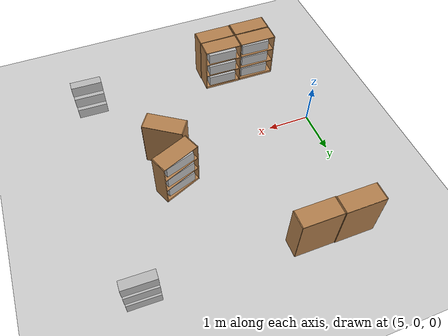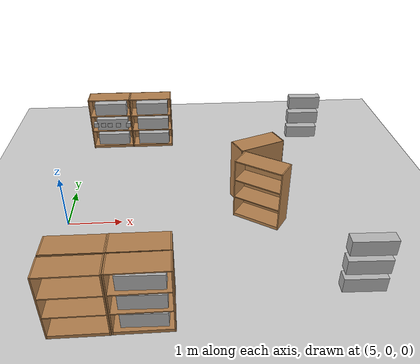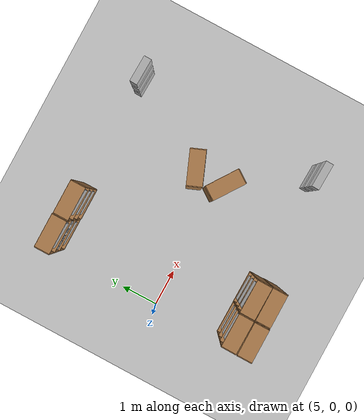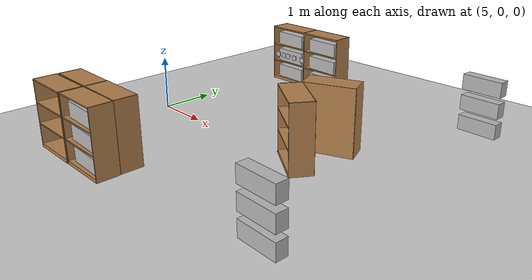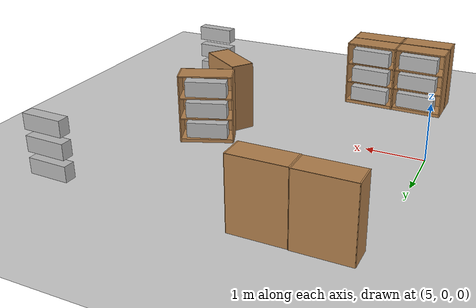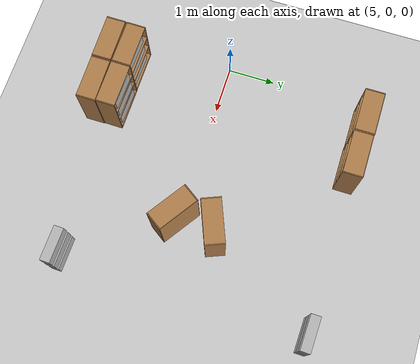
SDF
<sdf version="1.7">
 <world name="default">
  <model name="ground_plane">
   <static>1</static>
   <link name="link">
    <collision name="collision">
     <geometry><plane><normal>0 0 1</normal><size>100 100</size></plane></geometry>
     <surface><friction><ode><mu>100</mu><mu2>50</mu2></ode></friction></surface>
    </collision>
    <visual name="visual">
     <cast_shadows>0</cast_shadows>
     <geometry><plane><normal>0 0 1</normal><size>100 100</size></plane></geometry>
     <material>
      <script><uri>file://media/materials/scripts/gazebo.material</uri><name>Gazebo/Grey</name></script>
     </material>
    </visual>
   </link>
  </model>
  <model name="bookshelf">
   <static>1</static>
   <link name="link">
    <inertial><mass>1</mass></inertial>
    <collision name="back">
     <pose>0 0.005 0.6 0 -0 0</pose>
     <geometry><box><size>0.9 0.01 1.2</size></box></geometry>
    </collision>
    <visual name="visual1">
     <pose>0 0.005 0.6 0 -0 0</pose>
     <geometry><box><size>0.9 0.01 1.2</size></box></geometry>
     <material>
      <script><uri>file://media/materials/scripts/gazebo.material</uri><name>Gazebo/Wood</name></script>
     </material>
    </visual>
    <collision name="left_side">
     <pose>0.45 -0.195 0.6 0 -0 0</pose>
     <geometry><box><size>0.02 0.4 1.2</size></box></geometry>
    </collision>
    <visual name="visual2">
     <pose>0.45 -0.195 0.6 0 -0 0</pose>
     <geometry><box><size>0.02 0.4 1.2</size></box></geometry>
     <material>
      <script><uri>file://media/materials/scripts/gazebo.material</uri><name>Gazebo/Wood</name></script>
     </material>
    </visual>
    <collision name="right_side">
     <pose>-0.45 -0.195 0.6 0 -0 0</pose>
     <geometry><box><size>0.02 0.4 1.2</size></box></geometry>
    </collision>
    <visual name="visual3">
     <pose>-0.45 -0.195 0.6 0 -0 0</pose>
     <geometry><box><size>0.02 0.4 1.2</size></box></geometry>
     <material>
      <script><uri>file://media/materials/scripts/gazebo.material</uri><name>Gazebo/Wood</name></script>
     </material>
    </visual>
    <collision name="bottom">
     <pose>0 -0.195 0.03 0 -0 0</pose>
     <geometry><box><size>0.88 0.4 0.06</size></box></geometry>
    </collision>
    <visual name="visual4">
     <pose>0 -0.195 0.03 0 -0 0</pose>
     <geometry><box><size>0.88 0.4 0.06</size></box></geometry>
     <material>
      <script><uri>file://media/materials/scripts/gazebo.material</uri><name>Gazebo/Wood</name></script>
     </material>
    </visual>
    <collision name="top">
     <pose>0 -0.195 1.19 0 -0 0</pose>
     <geometry><box><size>0.88 0.4 0.02</size></box></geometry>
    </collision>
    <visual name="visual5">
     <pose>0 -0.195 1.19 0 -0 0</pose>
     <geometry><box><size>0.88 0.4 0.02</size></box></geometry>
     <material>
      <script><uri>file://media/materials/scripts/gazebo.material</uri><name>Gazebo/Wood</name></script>
     </material>
    </visual>
    <collision name="low_shelf">
     <pose>0 -0.195 0.43 0 -0 0</pose>
     <geometry><box><size>0.88 0.4 0.02</size></box></geometry>
    </collision>
    <visual name="visual6">
     <pose>0 -0.195 0.43 0 -0 0</pose>
     <geometry><box><size>0.88 0.4 0.02</size></box></geometry>
     <material>
      <script><uri>file://media/materials/scripts/gazebo.material</uri><name>Gazebo/Wood</name></script>
     </material>
    </visual>
    <collision name="high_shelf">
     <pose>0 -0.195 0.8 0 -0 0</pose>
     <geometry><box><size>0.88 0.4 0.02</size></box></geometry>
    </collision>
    <visual name="visual7">
     <pose>0 -0.195 0.8 0 -0 0</pose>
     <geometry><box><size>0.88 0.4 0.02</size></box></geometry>
     <material>
      <script><uri>file://media/materials/scripts/gazebo.material</uri><name>Gazebo/Wood</name></script>
     </material>
    </visual>
   </link>
   <pose>6.50028 3.23644 0.012624 0 -0 0</pose>
  </model>
  <model name="bookshelf_clone">
   <static>1</static>
   <link name="link">
    <inertial><mass>1</mass></inertial>
    <collision name="back">
     <pose>0 0.005 0.6 0 -0 0</pose>
     <geometry><box><size>0.9 0.01 1.2</size></box></geometry>
    </collision>
    <visual name="visual1">
     <pose>0 0.005 0.6 0 -0 0</pose>
     <geometry><box><size>0.9 0.01 1.2</size></box></geometry>
     <material>
      <script><uri>file://media/materials/scripts/gazebo.material</uri><name>Gazebo/Wood</name></script>
     </material>
    </visual>
    <collision name="left_side">
     <pose>0.45 -0.195 0.6 0 -0 0</pose>
     <geometry><box><size>0.02 0.4 1.2</size></box></geometry>
    </collision>
    <visual name="visual2">
     <pose>0.45 -0.195 0.6 0 -0 0</pose>
     <geometry><box><size>0.02 0.4 1.2</size></box></geometry>
     <material>
      <script><uri>file://media/materials/scripts/gazebo.material</uri><name>Gazebo/Wood</name></script>
     </material>
    </visual>
    <collision name="right_side">
     <pose>-0.45 -0.195 0.6 0 -0 0</pose>
     <geometry><box><size>0.02 0.4 1.2</size></box></geometry>
    </collision>
    <visual name="visual3">
     <pose>-0.45 -0.195 0.6 0 -0 0</pose>
     <geometry><box><size>0.02 0.4 1.2</size></box></geometry>
     <material>
      <script><uri>file://media/materials/scripts/gazebo.material</uri><name>Gazebo/Wood</name></script>
     </material>
    </visual>
    <collision name="bottom">
     <pose>0 -0.195 0.03 0 -0 0</pose>
     <geometry><box><size>0.88 0.4 0.06</size></box></geometry>
    </collision>
    <visual name="visual4">
     <pose>0 -0.195 0.03 0 -0 0</pose>
     <geometry><box><size>0.88 0.4 0.06</size></box></geometry>
     <material>
      <script><uri>file://media/materials/scripts/gazebo.material</uri><name>Gazebo/Wood</name></script>
     </material>
    </visual>
    <collision name="top">
     <pose>0 -0.195 1.19 0 -0 0</pose>
     <geometry><box><size>0.88 0.4 0.02</size></box></geometry>
    </collision>
    <visual name="visual5">
     <pose>0 -0.195 1.19 0 -0 0</pose>
     <geometry><box><size>0.88 0.4 0.02</size></box></geometry>
     <material>
      <script><uri>file://media/materials/scripts/gazebo.material</uri><name>Gazebo/Wood</name></script>
     </material>
    </visual>
    <collision name="low_shelf">
     <pose>0 -0.195 0.43 0 -0 0</pose>
     <geometry><box><size>0.88 0.4 0.02</size></box></geometry>
    </collision>
    <visual name="visual6">
     <pose>0 -0.195 0.43 0 -0 0</pose>
     <geometry><box><size>0.88 0.4 0.02</size></box></geometry>
     <material>
      <script><uri>file://media/materials/scripts/gazebo.material</uri><name>Gazebo/Wood</name></script>
     </material>
    </visual>
    <collision name="high_shelf">
     <pose>0 -0.195 0.8 0 -0 0</pose>
     <geometry><box><size>0.88 0.4 0.02</size></box></geometry>
    </collision>
    <visual name="visual7">
     <pose>0 -0.195 0.8 0 -0 0</pose>
     <geometry><box><size>0.88 0.4 0.02</size></box></geometry>
     <material>
      <script><uri>file://media/materials/scripts/gazebo.material</uri><name>Gazebo/Wood</name></script>
     </material>
    </visual>
   </link>
   <pose>5.58313 3.24733 0.012624 0 -0 0</pose>
  </model>
  <model name="bookshelf_clone_0_clone_1_clone">
   <static>1</static>
   <link name="link">
    <inertial><mass>1</mass></inertial>
    <collision name="back">
     <pose>0 0.005 0.6 0 -0 0</pose>
     <geometry><box><size>0.9 0.01 1.2</size></box></geometry>
    </collision>
    <visual name="visual1">
     <pose>0 0.005 0.6 0 -0 0</pose>
     <geometry><box><size>0.9 0.01 1.2</size></box></geometry>
     <material>
      <script><uri>file://media/materials/scripts/gazebo.material</uri><name>Gazebo/Wood</name></script>
     </material>
    </visual>
    <collision name="left_side">
     <pose>0.45 -0.195 0.6 0 -0 0</pose>
     <geometry><box><size>0.02 0.4 1.2</size></box></geometry>
    </collision>
    <visual name="visual2">
     <pose>0.45 -0.195 0.6 0 -0 0</pose>
     <geometry><box><size>0.02 0.4 1.2</size></box></geometry>
     <material>
      <script><uri>file://media/materials/scripts/gazebo.material</uri><name>Gazebo/Wood</name></script>
     </material>
    </visual>
    <collision name="right_side">
     <pose>-0.45 -0.195 0.6 0 -0 0</pose>
     <geometry><box><size>0.02 0.4 1.2</size></box></geometry>
    </collision>
    <visual name="visual3">
     <pose>-0.45 -0.195 0.6 0 -0 0</pose>
     <geometry><box><size>0.02 0.4 1.2</size></box></geometry>
     <material>
      <script><uri>file://media/materials/scripts/gazebo.material</uri><name>Gazebo/Wood</name></script>
     </material>
    </visual>
    <collision name="bottom">
     <pose>0 -0.195 0.03 0 -0 0</pose>
     <geometry><box><size>0.88 0.4 0.06</size></box></geometry>
    </collision>
    <visual name="visual4">
     <pose>0 -0.195 0.03 0 -0 0</pose>
     <geometry><box><size>0.88 0.4 0.06</size></box></geometry>
     <material>
      <script><uri>file://media/materials/scripts/gazebo.material</uri><name>Gazebo/Wood</name></script>
     </material>
    </visual>
    <collision name="top">
     <pose>0 -0.195 1.19 0 -0 0</pose>
     <geometry><box><size>0.88 0.4 0.02</size></box></geometry>
    </collision>
    <visual name="visual5">
     <pose>0 -0.195 1.19 0 -0 0</pose>
     <geometry><box><size>0.88 0.4 0.02</size></box></geometry>
     <material>
      <script><uri>file://media/materials/scripts/gazebo.material</uri><name>Gazebo/Wood</name></script>
     </material>
    </visual>
    <collision name="low_shelf">
     <pose>0 -0.195 0.43 0 -0 0</pose>
     <geometry><box><size>0.88 0.4 0.02</size></box></geometry>
    </collision>
    <visual name="visual6">
     <pose>0 -0.195 0.43 0 -0 0</pose>
     <geometry><box><size>0.88 0.4 0.02</size></box></geometry>
     <material>
      <script><uri>file://media/materials/scripts/gazebo.material</uri><name>Gazebo/Wood</name></script>
     </material>
    </visual>
    <collision name="high_shelf">
     <pose>0 -0.195 0.8 0 -0 0</pose>
     <geometry><box><size>0.88 0.4 0.02</size></box></geometry>
    </collision>
    <visual name="visual7">
     <pose>0 -0.195 0.8 0 -0 0</pose>
     <geometry><box><size>0.88 0.4 0.02</size></box></geometry>
     <material>
      <script><uri>file://media/materials/scripts/gazebo.material</uri><name>Gazebo/Wood</name></script>
     </material>
    </visual>
   </link>
   <pose>5.60363 -2.22371 0.012624 0 -0 0</pose>
  </model>
  <model name="bookshelf_clone_0_clone_1_clone_0">
   <static>1</static>
   <link name="link">
    <inertial><mass>1</mass></inertial>
    <collision name="back">
     <pose>0 0.005 0.6 0 -0 0</pose>
     <geometry><box><size>0.9 0.01 1.2</size></box></geometry>
    </collision>
    <visual name="visual1">
     <pose>0 0.005 0.6 0 -0 0</pose>
     <geometry><box><size>0.9 0.01 1.2</size></box></geometry>
     <material>
      <script><uri>file://media/materials/scripts/gazebo.material</uri><name>Gazebo/Wood</name></script>
     </material>
    </visual>
    <collision name="left_side">
     <pose>0.45 -0.195 0.6 0 -0 0</pose>
     <geometry><box><size>0.02 0.4 1.2</size></box></geometry>
    </collision>
    <visual name="visual2">
     <pose>0.45 -0.195 0.6 0 -0 0</pose>
     <geometry><box><size>0.02 0.4 1.2</size></box></geometry>
     <material>
      <script><uri>file://media/materials/scripts/gazebo.material</uri><name>Gazebo/Wood</name></script>
     </material>
    </visual>
    <collision name="right_side">
     <pose>-0.45 -0.195 0.6 0 -0 0</pose>
     <geometry><box><size>0.02 0.4 1.2</size></box></geometry>
    </collision>
    <visual name="visual3">
     <pose>-0.45 -0.195 0.6 0 -0 0</pose>
     <geometry><box><size>0.02 0.4 1.2</size></box></geometry>
     <material>
      <script><uri>file://media/materials/scripts/gazebo.material</uri><name>Gazebo/Wood</name></script>
     </material>
    </visual>
    <collision name="bottom">
     <pose>0 -0.195 0.03 0 -0 0</pose>
     <geometry><box><size>0.88 0.4 0.06</size></box></geometry>
    </collision>
    <visual name="visual4">
     <pose>0 -0.195 0.03 0 -0 0</pose>
     <geometry><box><size>0.88 0.4 0.06</size></box></geometry>
     <material>
      <script><uri>file://media/materials/scripts/gazebo.material</uri><name>Gazebo/Wood</name></script>
     </material>
    </visual>
    <collision name="top">
     <pose>0 -0.195 1.19 0 -0 0</pose>
     <geometry><box><size>0.88 0.4 0.02</size></box></geometry>
    </collision>
    <visual name="visual5">
     <pose>0 -0.195 1.19 0 -0 0</pose>
     <geometry><box><size>0.88 0.4 0.02</size></box></geometry>
     <material>
      <script><uri>file://media/materials/scripts/gazebo.material</uri><name>Gazebo/Wood</name></script>
     </material>
    </visual>
    <collision name="low_shelf">
     <pose>0 -0.195 0.43 0 -0 0</pose>
     <geometry><box><size>0.88 0.4 0.02</size></box></geometry>
    </collision>
    <visual name="visual6">
     <pose>0 -0.195 0.43 0 -0 0</pose>
     <geometry><box><size>0.88 0.4 0.02</size></box></geometry>
     <material>
      <script><uri>file://media/materials/scripts/gazebo.material</uri><name>Gazebo/Wood</name></script>
     </material>
    </visual>
    <collision name="high_shelf">
     <pose>0 -0.195 0.8 0 -0 0</pose>
     <geometry><box><size>0.88 0.4 0.02</size></box></geometry>
    </collision>
    <visual name="visual7">
     <pose>0 -0.195 0.8 0 -0 0</pose>
     <geometry><box><size>0.88 0.4 0.02</size></box></geometry>
     <material>
      <script><uri>file://media/materials/scripts/gazebo.material</uri><name>Gazebo/Wood</name></script>
     </material>
    </visual>
   </link>
   <pose>6.53127 -2.2171 0.012624 0 -0 0</pose>
  </model>
  <model name="bookshelf_clone_clone_clone_1_clone_0_clone">
   <static>1</static>
   <link name="link">
    <inertial><mass>1</mass></inertial>
    <collision name="back">
     <pose>0 0.005 0.6 0 -0 0</pose>
     <geometry><box><size>0.9 0.01 1.2</size></box></geometry>
    </collision>
    <visual name="visual1">
     <pose>0 0.005 0.6 0 -0 0</pose>
     <geometry><box><size>0.9 0.01 1.2</size></box></geometry>
     <material>
      <script><uri>file://media/materials/scripts/gazebo.material</uri><name>Gazebo/Wood</name></script>
     </material>
    </visual>
    <collision name="left_side">
     <pose>0.45 -0.195 0.6 0 -0 0</pose>
     <geometry><box><size>0.02 0.4 1.2</size></box></geometry>
    </collision>
    <visual name="visual2">
     <pose>0.45 -0.195 0.6 0 -0 0</pose>
     <geometry><box><size>0.02 0.4 1.2</size></box></geometry>
     <material>
      <script><uri>file://media/materials/scripts/gazebo.material</uri><name>Gazebo/Wood</name></script>
     </material>
    </visual>
    <collision name="right_side">
     <pose>-0.45 -0.195 0.6 0 -0 0</pose>
     <geometry><box><size>0.02 0.4 1.2</size></box></geometry>
    </collision>
    <visual name="visual3">
     <pose>-0.45 -0.195 0.6 0 -0 0</pose>
     <geometry><box><size>0.02 0.4 1.2</size></box></geometry>
     <material>
      <script><uri>file://media/materials/scripts/gazebo.material</uri><name>Gazebo/Wood</name></script>
     </material>
    </visual>
    <collision name="bottom">
     <pose>0 -0.195 0.03 0 -0 0</pose>
     <geometry><box><size>0.88 0.4 0.06</size></box></geometry>
    </collision>
    <visual name="visual4">
     <pose>0 -0.195 0.03 0 -0 0</pose>
     <geometry><box><size>0.88 0.4 0.06</size></box></geometry>
     <material>
      <script><uri>file://media/materials/scripts/gazebo.material</uri><name>Gazebo/Wood</name></script>
     </material>
    </visual>
    <collision name="top">
     <pose>0 -0.195 1.19 0 -0 0</pose>
     <geometry><box><size>0.88 0.4 0.02</size></box></geometry>
    </collision>
    <visual name="visual5">
     <pose>0 -0.195 1.19 0 -0 0</pose>
     <geometry><box><size>0.88 0.4 0.02</size></box></geometry>
     <material>
      <script><uri>file://media/materials/scripts/gazebo.material</uri><name>Gazebo/Wood</name></script>
     </material>
    </visual>
    <collision name="low_shelf">
     <pose>0 -0.195 0.43 0 -0 0</pose>
     <geometry><box><size>0.88 0.4 0.02</size></box></geometry>
    </collision>
    <visual name="visual6">
     <pose>0 -0.195 0.43 0 -0 0</pose>
     <geometry><box><size>0.88 0.4 0.02</size></box></geometry>
     <material>
      <script><uri>file://media/materials/scripts/gazebo.material</uri><name>Gazebo/Wood</name></script>
     </material>
    </visual>
    <collision name="high_shelf">
     <pose>0 -0.195 0.8 0 -0 0</pose>
     <geometry><box><size>0.88 0.4 0.02</size></box></geometry>
    </collision>
    <visual name="visual7">
     <pose>0 -0.195 0.8 0 -0 0</pose>
     <geometry><box><size>0.88 0.4 0.02</size></box></geometry>
     <material>
      <script><uri>file://media/materials/scripts/gazebo.material</uri><name>Gazebo/Wood</name></script>
     </material>
    </visual>
   </link>
   <pose>5.60608 -2.18659 0.012624 0 -0 3.13078</pose>
  </model>
  <model name="bookshelf_clone_clone_clone_1_clone_0_clone_0">
   <static>1</static>
   <link name="link">
    <inertial><mass>1</mass></inertial>
    <collision name="back">
     <pose>0 0.005 0.6 0 -0 0</pose>
     <geometry><box><size>0.9 0.01 1.2</size></box></geometry>
    </collision>
    <visual name="visual1">
     <pose>0 0.005 0.6 0 -0 0</pose>
     <geometry><box><size>0.9 0.01 1.2</size></box></geometry>
     <material>
      <script><uri>file://media/materials/scripts/gazebo.material</uri><name>Gazebo/Wood</name></script>
     </material>
    </visual>
    <collision name="left_side">
     <pose>0.45 -0.195 0.6 0 -0 0</pose>
     <geometry><box><size>0.02 0.4 1.2</size></box></geometry>
    </collision>
    <visual name="visual2">
     <pose>0.45 -0.195 0.6 0 -0 0</pose>
     <geometry><box><size>0.02 0.4 1.2</size></box></geometry>
     <material>
      <script><uri>file://media/materials/scripts/gazebo.material</uri><name>Gazebo/Wood</name></script>
     </material>
    </visual>
    <collision name="right_side">
     <pose>-0.45 -0.195 0.6 0 -0 0</pose>
     <geometry><box><size>0.02 0.4 1.2</size></box></geometry>
    </collision>
    <visual name="visual3">
     <pose>-0.45 -0.195 0.6 0 -0 0</pose>
     <geometry><box><size>0.02 0.4 1.2</size></box></geometry>
     <material>
      <script><uri>file://media/materials/scripts/gazebo.material</uri><name>Gazebo/Wood</name></script>
     </material>
    </visual>
    <collision name="bottom">
     <pose>0 -0.195 0.03 0 -0 0</pose>
     <geometry><box><size>0.88 0.4 0.06</size></box></geometry>
    </collision>
    <visual name="visual4">
     <pose>0 -0.195 0.03 0 -0 0</pose>
     <geometry><box><size>0.88 0.4 0.06</size></box></geometry>
     <material>
      <script><uri>file://media/materials/scripts/gazebo.material</uri><name>Gazebo/Wood</name></script>
     </material>
    </visual>
    <collision name="top">
     <pose>0 -0.195 1.19 0 -0 0</pose>
     <geometry><box><size>0.88 0.4 0.02</size></box></geometry>
    </collision>
    <visual name="visual5">
     <pose>0 -0.195 1.19 0 -0 0</pose>
     <geometry><box><size>0.88 0.4 0.02</size></box></geometry>
     <material>
      <script><uri>file://media/materials/scripts/gazebo.material</uri><name>Gazebo/Wood</name></script>
     </material>
    </visual>
    <collision name="low_shelf">
     <pose>0 -0.195 0.43 0 -0 0</pose>
     <geometry><box><size>0.88 0.4 0.02</size></box></geometry>
    </collision>
    <visual name="visual6">
     <pose>0 -0.195 0.43 0 -0 0</pose>
     <geometry><box><size>0.88 0.4 0.02</size></box></geometry>
     <material>
      <script><uri>file://media/materials/scripts/gazebo.material</uri><name>Gazebo/Wood</name></script>
     </material>
    </visual>
    <collision name="high_shelf">
     <pose>0 -0.195 0.8 0 -0 0</pose>
     <geometry><box><size>0.88 0.4 0.02</size></box></geometry>
    </collision>
    <visual name="visual7">
     <pose>0 -0.195 0.8 0 -0 0</pose>
     <geometry><box><size>0.88 0.4 0.02</size></box></geometry>
     <material>
      <script><uri>file://media/materials/scripts/gazebo.material</uri><name>Gazebo/Wood</name></script>
     </material>
    </visual>
   </link>
   <pose>6.52158 -2.19143 0.012624 0 -0 3.13078</pose>
  </model>
  <model name="bookshelf_clone_clone_clone_1_clone_0_clone_1_clone_clone">
   <static>1</static>
   <link name="link">
    <inertial><mass>1</mass></inertial>
    <collision name="back">
     <pose>0 0.005 0.6 0 -0 0</pose>
     <geometry><box><size>0.9 0.01 1.2</size></box></geometry>
    </collision>
    <visual name="visual1">
     <pose>0 0.005 0.6 0 -0 0</pose>
     <geometry><box><size>0.9 0.01 1.2</size></box></geometry>
     <material>
      <script><uri>file://media/materials/scripts/gazebo.material</uri><name>Gazebo/Wood</name></script>
     </material>
    </visual>
    <collision name="left_side">
     <pose>0.45 -0.195 0.6 0 -0 0</pose>
     <geometry><box><size>0.02 0.4 1.2</size></box></geometry>
    </collision>
    <visual name="visual2">
     <pose>0.45 -0.195 0.6 0 -0 0</pose>
     <geometry><box><size>0.02 0.4 1.2</size></box></geometry>
     <material>
      <script><uri>file://media/materials/scripts/gazebo.material</uri><name>Gazebo/Wood</name></script>
     </material>
    </visual>
    <collision name="right_side">
     <pose>-0.45 -0.195 0.6 0 -0 0</pose>
     <geometry><box><size>0.02 0.4 1.2</size></box></geometry>
    </collision>
    <visual name="visual3">
     <pose>-0.45 -0.195 0.6 0 -0 0</pose>
     <geometry><box><size>0.02 0.4 1.2</size></box></geometry>
     <material>
      <script><uri>file://media/materials/scripts/gazebo.material</uri><name>Gazebo/Wood</name></script>
     </material>
    </visual>
    <collision name="bottom">
     <pose>0 -0.195 0.03 0 -0 0</pose>
     <geometry><box><size>0.88 0.4 0.06</size></box></geometry>
    </collision>
    <visual name="visual4">
     <pose>0 -0.195 0.03 0 -0 0</pose>
     <geometry><box><size>0.88 0.4 0.06</size></box></geometry>
     <material>
      <script><uri>file://media/materials/scripts/gazebo.material</uri><name>Gazebo/Wood</name></script>
     </material>
    </visual>
    <collision name="top">
     <pose>0 -0.195 1.19 0 -0 0</pose>
     <geometry><box><size>0.88 0.4 0.02</size></box></geometry>
    </collision>
    <visual name="visual5">
     <pose>0 -0.195 1.19 0 -0 0</pose>
     <geometry><box><size>0.88 0.4 0.02</size></box></geometry>
     <material>
      <script><uri>file://media/materials/scripts/gazebo.material</uri><name>Gazebo/Wood</name></script>
     </material>
    </visual>
    <collision name="low_shelf">
     <pose>0 -0.195 0.43 0 -0 0</pose>
     <geometry><box><size>0.88 0.4 0.02</size></box></geometry>
    </collision>
    <visual name="visual6">
     <pose>0 -0.195 0.43 0 -0 0</pose>
     <geometry><box><size>0.88 0.4 0.02</size></box></geometry>
     <material>
      <script><uri>file://media/materials/scripts/gazebo.material</uri><name>Gazebo/Wood</name></script>
     </material>
    </visual>
    <collision name="high_shelf">
     <pose>0 -0.195 0.8 0 -0 0</pose>
     <geometry><box><size>0.88 0.4 0.02</size></box></geometry>
    </collision>
    <visual name="visual7">
     <pose>0 -0.195 0.8 0 -0 0</pose>
     <geometry><box><size>0.88 0.4 0.02</size></box></geometry>
     <material>
      <script><uri>file://media/materials/scripts/gazebo.material</uri><name>Gazebo/Wood</name></script>
     </material>
    </visual>
   </link>
   <pose>8.69753 0.106642 0.029212 0 0 -0.598378</pose>
  </model>
  <model name="bookshelf_clone_clone_clone_1_clone_0_clone_3_clone_clone">
   <static>1</static>
   <link name="link">
    <inertial><mass>1</mass></inertial>
    <collision name="back">
     <pose>0 0.005 0.6 0 -0 0</pose>
     <geometry><box><size>0.9 0.01 1.2</size></box></geometry>
    </collision>
    <visual name="visual1">
     <pose>0 0.005 0.6 0 -0 0</pose>
     <geometry><box><size>0.9 0.01 1.2</size></box></geometry>
     <material>
      <script><uri>file://media/materials/scripts/gazebo.material</uri><name>Gazebo/Wood</name></script>
     </material>
    </visual>
    <collision name="left_side">
     <pose>0.45 -0.195 0.6 0 -0 0</pose>
     <geometry><box><size>0.02 0.4 1.2</size></box></geometry>
    </collision>
    <visual name="visual2">
     <pose>0.45 -0.195 0.6 0 -0 0</pose>
     <geometry><box><size>0.02 0.4 1.2</size></box></geometry>
     <material>
      <script><uri>file://media/materials/scripts/gazebo.material</uri><name>Gazebo/Wood</name></script>
     </material>
    </visual>
    <collision name="right_side">
     <pose>-0.45 -0.195 0.6 0 -0 0</pose>
     <geometry><box><size>0.02 0.4 1.2</size></box></geometry>
    </collision>
    <visual name="visual3">
     <pose>-0.45 -0.195 0.6 0 -0 0</pose>
     <geometry><box><size>0.02 0.4 1.2</size></box></geometry>
     <material>
      <script><uri>file://media/materials/scripts/gazebo.material</uri><name>Gazebo/Wood</name></script>
     </material>
    </visual>
    <collision name="bottom">
     <pose>0 -0.195 0.03 0 -0 0</pose>
     <geometry><box><size>0.88 0.4 0.06</size></box></geometry>
    </collision>
    <visual name="visual4">
     <pose>0 -0.195 0.03 0 -0 0</pose>
     <geometry><box><size>0.88 0.4 0.06</size></box></geometry>
     <material>
      <script><uri>file://media/materials/scripts/gazebo.material</uri><name>Gazebo/Wood</name></script>
     </material>
    </visual>
    <collision name="top">
     <pose>0 -0.195 1.19 0 -0 0</pose>
     <geometry><box><size>0.88 0.4 0.02</size></box></geometry>
    </collision>
    <visual name="visual5">
     <pose>0 -0.195 1.19 0 -0 0</pose>
     <geometry><box><size>0.88 0.4 0.02</size></box></geometry>
     <material>
      <script><uri>file://media/materials/scripts/gazebo.material</uri><name>Gazebo/Wood</name></script>
     </material>
    </visual>
    <collision name="low_shelf">
     <pose>0 -0.195 0.43 0 -0 0</pose>
     <geometry><box><size>0.88 0.4 0.02</size></box></geometry>
    </collision>
    <visual name="visual6">
     <pose>0 -0.195 0.43 0 -0 0</pose>
     <geometry><box><size>0.88 0.4 0.02</size></box></geometry>
     <material>
      <script><uri>file://media/materials/scripts/gazebo.material</uri><name>Gazebo/Wood</name></script>
     </material>
    </visual>
    <collision name="high_shelf">
     <pose>0 -0.195 0.8 0 -0 0</pose>
     <geometry><box><size>0.88 0.4 0.02</size></box></geometry>
    </collision>
    <visual name="visual7">
     <pose>0 -0.195 0.8 0 -0 0</pose>
     <geometry><box><size>0.88 0.4 0.02</size></box></geometry>
     <material>
      <script><uri>file://media/materials/scripts/gazebo.material</uri><name>Gazebo/Wood</name></script>
     </material>
    </visual>
   </link>
   <pose>8.68842 0.576564 0.012624 0 0 -2.75538</pose>
  </model>
  <model name="book1.xacro_clone_0">
   <link name="base_footprint">
    <inertial>
     <pose>1 1 1.5 0 -0 0</pose>
     <mass>6</mass>
     <inertia><ixx>0.7503</ixx><ixy>0</ixy><ixz>0</ixz><iyy>0.7503</iyy><iyz>0</iyz><izz>0.003</izz></inertia>
    </inertial>
    <collision name="base_footprint_fixed_joint_lump__base_link_collision">
     <pose>1 1 1 0 -0 0</pose>
     <geometry><box><size>0.7 0.2 0.27</size></box></geometry>
    </collision>
    <collision name="base_footprint_fixed_joint_lump__book_link_2_collision_1">
     <pose>1 1 1.375 0 -0 0</pose>
     <geometry><box><size>0.7 0.2 0.27</size></box></geometry>
    </collision>
    <collision name="base_footprint_fixed_joint_lump__book_link_3_collision_2">
     <pose>1 1 1.75 0 -0 0</pose>
     <geometry><box><size>0.7 0.2 0.27</size></box></geometry>
    </collision>
    <visual name="base_footprint_fixed_joint_lump__base_link_visual">
     <pose>1 1 1 0 -0 0</pose>
     <geometry><box><size>0.7 0.2 0.27</size></box></geometry>
    </visual>
    <visual name="base_footprint_fixed_joint_lump__book_link_2_visual_1">
     <pose>1 1 1.375 0 -0 0</pose>
     <geometry><box><size>0.7 0.2 0.27</size></box></geometry>
    </visual>
    <visual name="base_footprint_fixed_joint_lump__book_link_3_visual_2">
     <pose>1 1 1.75 0 -0 0</pose>
     <geometry><box><size>0.7 0.2 0.27</size></box></geometry>
    </visual>
   </link>
   <frame name="book_joint_2" attached_to="base_link"><pose>0 0 0.375 0 -0 0</pose></frame>
   <frame name="book_link_2" attached_to="book_joint_2"/>
   <frame name="book_joint_3" attached_to="base_link"><pose>0 0 0.75 0 -0 0</pose></frame>
   <frame name="book_link_3" attached_to="book_joint_3"/>
   <frame name="base_joint" attached_to="base_footprint"><pose>1 1 1 0 -0 0</pose></frame>
   <frame name="base_link" attached_to="base_joint"/>
   <pose>4.57298 2.02001 -0.787376 -0 -0 -0.03072</pose>
  </model>
  <model name="book1.xacro_clone_1">
   <link name="base_footprint">
    <inertial>
     <pose>1 1 1.5 0 -0 0</pose>
     <mass>6</mass>
     <inertia><ixx>0.7503</ixx><ixy>0</ixy><ixz>0</ixz><iyy>0.7503</iyy><iyz>0</iyz><izz>0.003</izz></inertia>
    </inertial>
    <collision name="base_footprint_fixed_joint_lump__base_link_collision">
     <pose>1 1 1 0 -0 0</pose>
     <geometry><box><size>0.7 0.2 0.27</size></box></geometry>
    </collision>
    <collision name="base_footprint_fixed_joint_lump__book_link_2_collision_1">
     <pose>1 1 1.375 0 -0 0</pose>
     <geometry><box><size>0.7 0.2 0.27</size></box></geometry>
    </collision>
    <collision name="base_footprint_fixed_joint_lump__book_link_3_collision_2">
     <pose>1 1 1.75 0 -0 0</pose>
     <geometry><box><size>0.7 0.2 0.27</size></box></geometry>
    </collision>
    <visual name="base_footprint_fixed_joint_lump__base_link_visual">
     <pose>1 1 1 0 -0 0</pose>
     <geometry><box><size>0.7 0.2 0.27</size></box></geometry>
    </visual>
    <visual name="base_footprint_fixed_joint_lump__book_link_2_visual_1">
     <pose>1 1 1.375 0 -0 0</pose>
     <geometry><box><size>0.7 0.2 0.27</size></box></geometry>
    </visual>
    <visual name="base_footprint_fixed_joint_lump__book_link_3_visual_2">
     <pose>1 1 1.75 0 -0 0</pose>
     <geometry><box><size>0.7 0.2 0.27</size></box></geometry>
    </visual>
   </link>
   <frame name="book_joint_2" attached_to="base_link"><pose>0 0 0.375 0 -0 0</pose></frame>
   <frame name="book_link_2" attached_to="book_joint_2"/>
   <frame name="book_joint_3" attached_to="base_link"><pose>0 0 0.75 0 -0 0</pose></frame>
   <frame name="book_link_3" attached_to="book_joint_3"/>
   <frame name="base_joint" attached_to="base_footprint"><pose>1 1 1 0 -0 0</pose></frame>
   <frame name="base_link" attached_to="base_joint"/>
   <pose>5.50234 2.00255 -0.787376 -0 -0 -0.03072</pose>
  </model>
  <model name="book1.xacro_clone_2">
   <link name="base_footprint">
    <inertial>
     <pose>1 1 1.5 0 -0 0</pose>
     <mass>6</mass>
     <inertia><ixx>0.7503</ixx><ixy>0</ixy><ixz>0</ixz><iyy>0.7503</iyy><iyz>0</iyz><izz>0.003</izz></inertia>
    </inertial>
    <collision name="base_footprint_fixed_joint_lump__base_link_collision">
     <pose>1 1 1 0 -0 0</pose>
     <geometry><box><size>0.7 0.2 0.27</size></box></geometry>
    </collision>
    <collision name="base_footprint_fixed_joint_lump__book_link_2_collision_1">
     <pose>1 1 1.375 0 -0 0</pose>
     <geometry><box><size>0.7 0.2 0.27</size></box></geometry>
    </collision>
    <collision name="base_footprint_fixed_joint_lump__book_link_3_collision_2">
     <pose>1 1 1.75 0 -0 0</pose>
     <geometry><box><size>0.7 0.2 0.27</size></box></geometry>
    </collision>
    <visual name="base_footprint_fixed_joint_lump__base_link_visual">
     <pose>1 1 1 0 -0 0</pose>
     <geometry><box><size>0.7 0.2 0.27</size></box></geometry>
    </visual>
    <visual name="base_footprint_fixed_joint_lump__book_link_2_visual_1">
     <pose>1 1 1.375 0 -0 0</pose>
     <geometry><box><size>0.7 0.2 0.27</size></box></geometry>
    </visual>
    <visual name="base_footprint_fixed_joint_lump__book_link_3_visual_2">
     <pose>1 1 1.75 0 -0 0</pose>
     <geometry><box><size>0.7 0.2 0.27</size></box></geometry>
    </visual>
   </link>
   <frame name="book_joint_2" attached_to="base_link"><pose>0 0 0.375 0 -0 0</pose></frame>
   <frame name="book_link_2" attached_to="book_joint_2"/>
   <frame name="book_joint_3" attached_to="base_link"><pose>0 0 0.75 0 -0 0</pose></frame>
   <frame name="book_link_3" attached_to="book_joint_3"/>
   <frame name="base_joint" attached_to="base_footprint"><pose>1 1 1 0 -0 0</pose></frame>
   <frame name="base_link" attached_to="base_joint"/>
   <pose>9.02298 2.08893 -0.787376 0 0 -0.030721</pose>
  </model>
  <model name="book1.xacro_clone_6">
   <link name="base_footprint">
    <inertial>
     <pose>1 1 1.5 0 -0 0</pose>
     <mass>6</mass>
     <inertia><ixx>0.7503</ixx><ixy>0</ixy><ixz>0</ixz><iyy>0.7503</iyy><iyz>0</iyz><izz>0.003</izz></inertia>
    </inertial>
    <collision name="base_footprint_fixed_joint_lump__base_link_collision">
     <pose>1 1 1 0 -0 0</pose>
     <geometry><box><size>0.7 0.2 0.27</size></box></geometry>
    </collision>
    <collision name="base_footprint_fixed_joint_lump__book_link_2_collision_1">
     <pose>1 1 1.375 0 -0 0</pose>
     <geometry><box><size>0.7 0.2 0.27</size></box></geometry>
    </collision>
    <collision name="base_footprint_fixed_joint_lump__book_link_3_collision_2">
     <pose>1 1 1.75 0 -0 0</pose>
     <geometry><box><size>0.7 0.2 0.27</size></box></geometry>
    </collision>
    <visual name="base_footprint_fixed_joint_lump__base_link_visual">
     <pose>1 1 1 0 -0 0</pose>
     <geometry><box><size>0.7 0.2 0.27</size></box></geometry>
    </visual>
    <visual name="base_footprint_fixed_joint_lump__book_link_2_visual_1">
     <pose>1 1 1.375 0 -0 0</pose>
     <geometry><box><size>0.7 0.2 0.27</size></box></geometry>
    </visual>
    <visual name="base_footprint_fixed_joint_lump__book_link_3_visual_2">
     <pose>1 1 1.75 0 -0 0</pose>
     <geometry><box><size>0.7 0.2 0.27</size></box></geometry>
    </visual>
   </link>
   <frame name="book_joint_2" attached_to="base_link"><pose>0 0 0.375 0 -0 0</pose></frame>
   <frame name="book_link_2" attached_to="book_joint_2"/>
   <frame name="book_joint_3" attached_to="base_link"><pose>0 0 0.75 0 -0 0</pose></frame>
   <frame name="book_link_3" attached_to="book_joint_3"/>
   <frame name="base_joint" attached_to="base_footprint"><pose>1 1 1 0 -0 0</pose></frame>
   <frame name="base_link" attached_to="base_joint"/>
   <pose>8.88338 -2.97248 -0.787376 0 0 -0.030721</pose>
  </model>
  <model name="book1.xacro_clone_7">
   <link name="base_footprint">
    <inertial>
     <pose>1 1 1.5 0 -0 0</pose>
     <mass>6</mass>
     <inertia><ixx>0.7503</ixx><ixy>0</ixy><ixz>0</ixz><iyy>0.7503</iyy><iyz>0</iyz><izz>0.003</izz></inertia>
    </inertial>
    <collision name="base_footprint_fixed_joint_lump__base_link_collision">
     <pose>1 1 1 0 -0 0</pose>
     <geometry><box><size>0.7 0.2 0.27</size></box></geometry>
    </collision>
    <collision name="base_footprint_fixed_joint_lump__book_link_2_collision_1">
     <pose>1 1 1.375 0 -0 0</pose>
     <geometry><box><size>0.7 0.2 0.27</size></box></geometry>
    </collision>
    <collision name="base_footprint_fixed_joint_lump__book_link_3_collision_2">
     <pose>1 1 1.75 0 -0 0</pose>
     <geometry><box><size>0.7 0.2 0.27</size></box></geometry>
    </collision>
    <visual name="base_footprint_fixed_joint_lump__base_link_visual">
     <pose>1 1 1 0 -0 0</pose>
     <geometry><box><size>0.7 0.2 0.27</size></box></geometry>
    </visual>
    <visual name="base_footprint_fixed_joint_lump__book_link_2_visual_1">
     <pose>1 1 1.375 0 -0 0</pose>
     <geometry><box><size>0.7 0.2 0.27</size></box></geometry>
    </visual>
    <visual name="base_footprint_fixed_joint_lump__book_link_3_visual_2">
     <pose>1 1 1.75 0 -0 0</pose>
     <geometry><box><size>0.7 0.2 0.27</size></box></geometry>
    </visual>
   </link>
   <frame name="book_joint_2" attached_to="base_link"><pose>0 0 0.375 0 -0 0</pose></frame>
   <frame name="book_link_2" attached_to="book_joint_2"/>
   <frame name="book_joint_3" attached_to="base_link"><pose>0 0 0.75 0 -0 0</pose></frame>
   <frame name="book_link_3" attached_to="book_joint_3"/>
   <frame name="base_joint" attached_to="base_footprint"><pose>1 1 1 0 -0 0</pose></frame>
   <frame name="base_link" attached_to="base_joint"/>
   <pose>5.4988 -2.88368 -0.787376 0 0 -0.030721</pose>
  </model>
  <model name="book1.xacro_clone_8">
   <link name="base_footprint">
    <inertial>
     <pose>1 1 1.5 0 -0 0</pose>
     <mass>6</mass>
     <inertia><ixx>0.7503</ixx><ixy>0</ixy><ixz>0</ixz><iyy>0.7503</iyy><iyz>0</iyz><izz>0.003</izz></inertia>
    </inertial>
    <collision name="base_footprint_fixed_joint_lump__base_link_collision">
     <pose>1 1 1 0 -0 0</pose>
     <geometry><box><size>0.7 0.2 0.27</size></box></geometry>
    </collision>
    <collision name="base_footprint_fixed_joint_lump__book_link_2_collision_1">
     <pose>1 1 1.375 0 -0 0</pose>
     <geometry><box><size>0.7 0.2 0.27</size></box></geometry>
    </collision>
    <collision name="base_footprint_fixed_joint_lump__book_link_3_collision_2">
     <pose>1 1 1.75 0 -0 0</pose>
     <geometry><box><size>0.7 0.2 0.27</size></box></geometry>
    </collision>
    <visual name="base_footprint_fixed_joint_lump__base_link_visual">
     <pose>1 1 1 0 -0 0</pose>
     <geometry><box><size>0.7 0.2 0.27</size></box></geometry>
    </visual>
    <visual name="base_footprint_fixed_joint_lump__book_link_2_visual_1">
     <pose>1 1 1.375 0 -0 0</pose>
     <geometry><box><size>0.7 0.2 0.27</size></box></geometry>
    </visual>
    <visual name="base_footprint_fixed_joint_lump__book_link_3_visual_2">
     <pose>1 1 1.75 0 -0 0</pose>
     <geometry><box><size>0.7 0.2 0.27</size></box></geometry>
    </visual>
   </link>
   <frame name="book_joint_2" attached_to="base_link"><pose>0 0 0.375 0 -0 0</pose></frame>
   <frame name="book_link_2" attached_to="book_joint_2"/>
   <frame name="book_joint_3" attached_to="base_link"><pose>0 0 0.75 0 -0 0</pose></frame>
   <frame name="book_link_3" attached_to="book_joint_3"/>
   <frame name="base_joint" attached_to="base_footprint"><pose>1 1 1 0 -0 0</pose></frame>
   <frame name="base_link" attached_to="base_joint"/>
   <pose>4.61042 -2.9065 -0.787376 0 0 -0.030721</pose>
  </model>
  <model name="book1.xacro_clone_0_clone_0">
   <link name="base_footprint">
    <inertial>
     <pose>1 1 1.5 0 -0 0</pose>
     <mass>6</mass>
     <inertia><ixx>0.7503</ixx><ixy>0</ixy><ixz>0</ixz><iyy>0.7503</iyy><iyz>0</iyz><izz>0.003</izz></inertia>
    </inertial>
    <collision name="base_footprint_fixed_joint_lump__base_link_collision">
     <pose>1 1 1 0 -0 0</pose>
     <geometry><box><size>0.7 0.2 0.27</size></box></geometry>
    </collision>
    <collision name="base_footprint_fixed_joint_lump__book_link_2_collision_1">
     <pose>1 1 1.375 0 -0 0</pose>
     <geometry><box><size>0.7 0.2 0.27</size></box></geometry>
    </collision>
    <collision name="base_footprint_fixed_joint_lump__book_link_3_collision_2">
     <pose>1 1 1.75 0 -0 0</pose>
     <geometry><box><size>0.7 0.2 0.27</size></box></geometry>
    </collision>
    <visual name="base_footprint_fixed_joint_lump__base_link_visual">
     <pose>1 1 1 0 -0 0</pose>
     <geometry><box><size>0.7 0.2 0.27</size></box></geometry>
    </visual>
    <visual name="base_footprint_fixed_joint_lump__book_link_2_visual_1">
     <pose>1 1 1.375 0 -0 0</pose>
     <geometry><box><size>0.7 0.2 0.27</size></box></geometry>
    </visual>
    <visual name="base_footprint_fixed_joint_lump__book_link_3_visual_2">
     <pose>1 1 1.75 0 -0 0</pose>
     <geometry><box><size>0.7 0.2 0.27</size></box></geometry>
    </visual>
   </link>
   <frame name="book_joint_2" attached_to="base_link"><pose>0 0 0.375 0 -0 0</pose></frame>
   <frame name="book_link_2" attached_to="book_joint_2"/>
   <frame name="book_joint_3" attached_to="base_link"><pose>0 0 0.75 0 -0 0</pose></frame>
   <frame name="book_link_3" attached_to="book_joint_3"/>
   <frame name="base_joint" attached_to="base_footprint"><pose>1 1 1 0 -0 0</pose></frame>
   <frame name="base_link" attached_to="base_joint"/>
   <pose>5.51858 -3.41891 -0.787376 -0 -0 -0.03072</pose>
  </model>
  <model name="book1.xacro_clone_0_clone_3">
   <link name="base_footprint">
    <inertial>
     <pose>1 1 1.5 0 -0 0</pose>
     <mass>6</mass>
     <inertia><ixx>0.7503</ixx><ixy>0</ixy><ixz>0</ixz><iyy>0.7503</iyy><iyz>0</iyz><izz>0.003</izz></inertia>
    </inertial>
    <collision name="base_footprint_fixed_joint_lump__base_link_collision">
     <pose>1 1 1 0 -0 0</pose>
     <geometry><box><size>0.7 0.2 0.27</size></box></geometry>
    </collision>
    <collision name="base_footprint_fixed_joint_lump__book_link_2_collision_1">
     <pose>1 1 1.375 0 -0 0</pose>
     <geometry><box><size>0.7 0.2 0.27</size></box></geometry>
    </collision>
    <collision name="base_footprint_fixed_joint_lump__book_link_3_collision_2">
     <pose>1 1 1.75 0 -0 0</pose>
     <geometry><box><size>0.7 0.2 0.27</size></box></geometry>
    </collision>
    <visual name="base_footprint_fixed_joint_lump__base_link_visual">
     <pose>1 1 1 0 -0 0</pose>
     <geometry><box><size>0.7 0.2 0.27</size></box></geometry>
    </visual>
    <visual name="base_footprint_fixed_joint_lump__book_link_2_visual_1">
     <pose>1 1 1.375 0 -0 0</pose>
     <geometry><box><size>0.7 0.2 0.27</size></box></geometry>
    </visual>
    <visual name="base_footprint_fixed_joint_lump__book_link_3_visual_2">
     <pose>1 1 1.75 0 -0 0</pose>
     <geometry><box><size>0.7 0.2 0.27</size></box></geometry>
    </visual>
   </link>
   <frame name="book_joint_2" attached_to="base_link"><pose>0 0 0.375 0 -0 0</pose></frame>
   <frame name="book_link_2" attached_to="book_joint_2"/>
   <frame name="book_joint_3" attached_to="base_link"><pose>0 0 0.75 0 -0 0</pose></frame>
   <frame name="book_link_3" attached_to="book_joint_3"/>
   <frame name="base_joint" attached_to="base_footprint"><pose>1 1 1 0 -0 0</pose></frame>
   <frame name="base_link" attached_to="base_joint"/>
   <pose>7.96047 -0.450774 -0.787367 -2e-06 1.1e-05 0.326592</pose>
  </model>
  <model name="B4">
   <static>1</static>
   <link name="link">
    <pose>0 0 0.58 1.57 -0 0</pose>
    <inertial>
     <mass>0.1</mass>
     <inertia><ixx>0.00058</ixx><ixy>0</ixy><ixz>0</ixz><iyy>0.00058</iyy><iyz>0</iyz><izz>0.00019</izz></inertia>
    </inertial>
    <collision name="collision"><geometry><box><size>0 0 0</size></box></geometry></collision>
    <visual name="visual">
     <geometry><box><size>0.1 0.1 0.1</size></box></geometry>
     <material>
      <script>
       <uri>model://B4/materials/scripts</uri>
       <uri>model://B4/materials/textures</uri>
       <name>B4/Diffuse</name>
      </script>
     </material>
    </visual>
   </link>
   <pose>5.22726 2.93296 -0 0 -0 0</pose>
  </model>
  <model name="B5">
   <static>1</static>
   <link name="link">
    <pose>0 0 0.58 1.57 -0 0</pose>
    <inertial>
     <mass>0.1</mass>
     <inertia><ixx>0.00058</ixx><ixy>0</ixy><ixz>0</ixz><iyy>0.00058</iyy><iyz>0</iyz><izz>0.00019</izz></inertia>
    </inertial>
    <collision name="collision"><geometry><box><size>0 0 0</size></box></geometry></collision>
    <visual name="visual">
     <geometry><box><size>0.1 0.1 0.1</size></box></geometry>
     <material>
      <script>
       <uri>model://B5/materials/scripts</uri>
       <uri>model://B5/materials/textures</uri>
       <name>B5/Diffuse</name>
      </script>
     </material>
    </visual>
   </link>
   <pose>5.95928 2.91464 -0 0 -0 0</pose>
  </model>
  <model name="A6">
   <static>1</static>
   <link name="link">
    <pose>0 0 0.58 1.57 -0 0</pose>
    <inertial>
     <mass>0.1</mass>
     <inertia><ixx>0.00058</ixx><ixy>0</ixy><ixz>0</ixz><iyy>0.00058</iyy><iyz>0</iyz><izz>0.00019</izz></inertia>
    </inertial>
    <collision name="collision"><geometry><box><size>0 0 0</size></box></geometry></collision>
    <visual name="visual">
     <geometry><box><size>0.1 0.1 0.1</size></box></geometry>
     <material>
      <script>
       <uri>model://A6/materials/scripts</uri>
       <uri>model://A6/materials/textures</uri>
       <name>A6/Diffuse</name>
      </script>
     </material>
    </visual>
   </link>
   <pose>5.38782 2.93749 -0 0 -0 0</pose>
  </model>
  <model name="A7">
   <static>1</static>
   <link name="link">
    <pose>0 0 0.58 1.57 -0 0</pose>
    <inertial>
     <mass>0.1</mass>
     <inertia><ixx>0.00058</ixx><ixy>0</ixy><ixz>0</ixz><iyy>0.00058</iyy><iyz>0</iyz><izz>0.00019</izz></inertia>
    </inertial>
    <collision name="collision"><geometry><box><size>0 0 0</size></box></geometry></collision>
    <visual name="visual">
     <geometry><box><size>0.1 0.1 0.1</size></box></geometry>
     <material>
      <script>
       <uri>model://A7/materials/scripts</uri>
       <uri>model://A7/materials/textures</uri>
       <name>A7/Diffuse</name>
      </script>
     </material>
    </visual>
   </link>
   <pose>5.53712 2.92687 -0 0 -0 0</pose>
  </model>
  <model name="A8">
   <static>1</static>
   <link name="link">
    <pose>0 0 0.58 1.57 -0 0</pose>
    <inertial>
     <mass>0.1</mass>
     <inertia><ixx>0.00058</ixx><ixy>0</ixy><ixz>0</ixz><iyy>0.00058</iyy><iyz>0</iyz><izz>0.00019</izz></inertia>
    </inertial>
    <collision name="collision"><geometry><box><size>0 0 0</size></box></geometry></collision>
    <visual name="visual">
     <geometry><box><size>0.1 0.1 0.1</size></box></geometry>
     <material>
      <script>
       <uri>model://A8/materials/scripts</uri>
       <uri>model://A8/materials/textures</uri>
       <name>A8/Diffuse</name>
      </script>
     </material>
    </visual>
   </link>
   <pose>5.7294 2.92272 -0 0 -0 0</pose>
  </model>
 </world>
</sdf>
